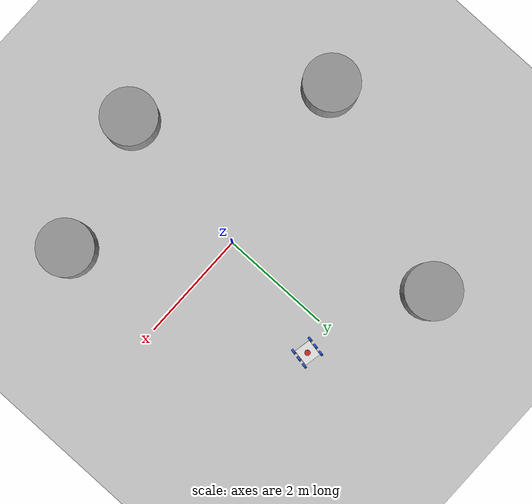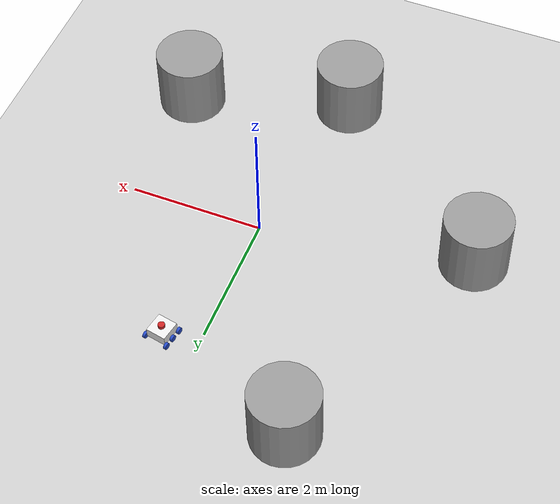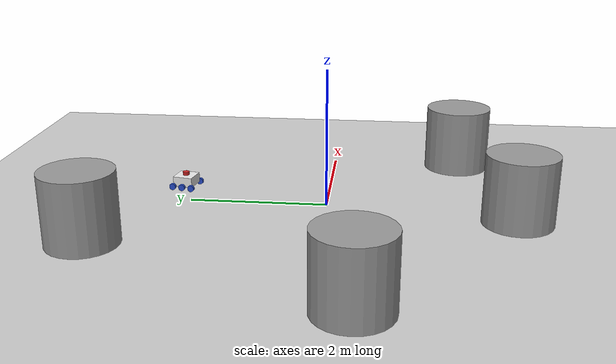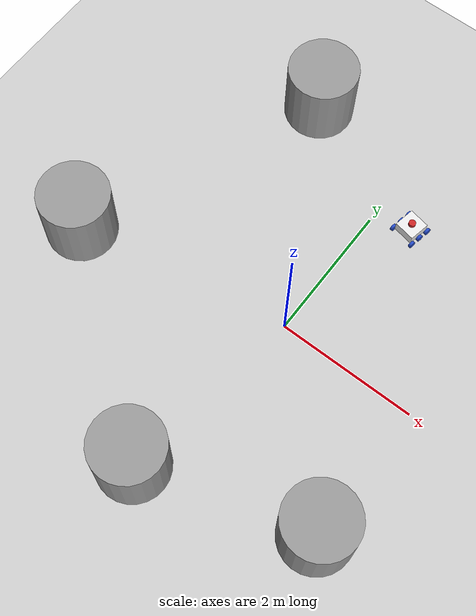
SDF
<sdf version="1.7">
 <world name="default">
  <light name="sun" type="directional">
   <pose>0 0 10 0 -0 0</pose>
   <diffuse>0.8 0.8 0.8 1</diffuse>
   <specular>0.2 0.2 0.2 1</specular>
   <attenuation>
    <range>1000</range>
    <constant>0.9</constant>
    <linear>0.01</linear>
    <quadratic>0.001</quadratic>
   </attenuation>
   <direction>-0.5 0.1 -0.9</direction>
   <spot><inner_angle>0</inner_angle><outer_angle>0</outer_angle><falloff>0</falloff></spot>
  </light>
  <model name="ground_plane">
   <static>1</static>
   <link name="link">
    <collision name="collision">
     <geometry><plane><normal>0 0 1</normal><size>100 100</size></plane></geometry>
     <surface>
      <contact><collide_bitmask>65535</collide_bitmask></contact>
      <friction><ode><mu>100</mu><mu2>50</mu2></ode></friction>
     </surface>
    </collision>
    <visual name="visual">
     <cast_shadows>0</cast_shadows>
     <geometry><plane><normal>0 0 1</normal><size>100 100</size></plane></geometry>
     <material>
      <script><uri>file://media/materials/scripts/gazebo.material</uri><name>Gazebo/Grey</name></script>
     </material>
    </visual>
   </link>
  </model>
  <gravity>0 0 -9.8</gravity>
  <magnetic_field>6e-06 2.3e-05 -4.2e-05</magnetic_field>
  <atmosphere type="adiabatic"/>
  <physics type="ode">
   <max_step_size>0.001</max_step_size>
   <real_time_factor>1</real_time_factor>
   <real_time_update_rate>1000</real_time_update_rate>
  </physics>
  <scene><ambient>0.4 0.4 0.4 1</ambient><background>0.7 0.7 0.7 1</background><shadows>1</shadows></scene>
  <audio><device>default</device></audio>
  <spherical_coordinates>
   <surface_model>EARTH_WGS84</surface_model>
   <latitude_deg>0</latitude_deg>
   <longitude_deg>0</longitude_deg>
   <elevation>0</elevation>
   <heading_deg>0</heading_deg>
  </spherical_coordinates>
  <model name="willy">
   <link name="base_footprint">
    <inertial>
     <pose>0 0 0.103571 0 -0 0</pose>
     <mass>0.7</mass>
     <inertia>
      <ixx>0.00628274</ixx>
      <ixy>0</ixy>
      <ixz>0</ixz>
      <iyy>0.00628274</iyy>
      <iyz>0</iyz>
      <izz>0.00775</izz>
     </inertia>
    </inertial>
    <collision name="base_footprint_fixed_joint_lump__chassis_collision">
     <pose>0 0 0.075 0 -0 0</pose>
     <geometry><box><size>0.3 0.3 0.15</size></box></geometry>
    </collision>
    <collision name="base_footprint_fixed_joint_lump__laser_frame_collision_1">
     <pose>0 0 0.175 0 -0 0</pose>
     <geometry><cylinder><length>0.05</length><radius>0.05</radius></cylinder></geometry>
    </collision>
    <visual name="base_footprint_fixed_joint_lump__chassis_visual">
     <pose>0 0 0.075 0 -0 0</pose>
     <geometry><box><size>0.3 0.3 0.15</size></box></geometry>
     <material>
      <script><name>Gazebo/White</name><uri>file://media/materials/scripts/gazebo.material</uri></script>
     </material>
    </visual>
    <visual name="base_footprint_fixed_joint_lump__laser_frame_visual_1">
     <pose>0 0 0.175 0 -0 0</pose>
     <geometry><cylinder><length>0.05</length><radius>0.05</radius></cylinder></geometry>
     <material>
      <script><name>Gazebo/Red</name><uri>file://media/materials/scripts/gazebo.material</uri></script>
     </material>
    </visual>
    <sensor name="laser" type="ray">
     <visualize>1</visualize>
     <update_rate>10</update_rate>
     <ray>
      <scan>
       <horizontal>
        <samples>360</samples>
        <min_angle>-3.14</min_angle>
        <max_angle>3.14</max_angle>
        <resolution>1</resolution>
       </horizontal>
       <vertical><samples>1</samples><min_angle>0</min_angle><max_angle>0</max_angle></vertical>
      </scan>
      <range><min>0.3</min><max>12</max></range>
     </ray>
     <plugin name="laser_controller" filename="libgazebo_ros_ray_sensor.so">
      <ros><argument>~/out:=scan</argument></ros>
      <output_type>sensor_msgs/LaserScan</output_type>
      <frame_name>laser_frame</frame_name>
     </plugin>
     <pose>0 0 0.175 0 -0 0</pose>
    </sensor>
   </link>
   <joint name="fl_wheel_joint" type="revolute">
    <pose relative_to="base_footprint">0.15 0.175 0 -1.5708 0 0</pose>
    <parent>base_footprint</parent>
    <child>fl_wheel</child>
    <axis>
     <xyz>0 0 1</xyz>
     <limit><lower>-1e+16</lower><upper>1e+16</upper></limit>
     <dynamics><spring_reference>0</spring_reference><spring_stiffness>0</spring_stiffness></dynamics>
    </axis>
   </joint>
   <link name="fl_wheel">
    <pose relative_to="fl_wheel_joint">0 0 0 0 -0 0</pose>
    <inertial>
     <mass>0.1</mass>
     <inertia>
      <ixx>7.58333e-05</ixx>
      <ixy>0</ixy>
      <ixz>0</ixz>
      <iyy>7.58333e-05</iyy>
      <iyz>0</iyz>
      <izz>0.000125</izz>
     </inertia>
    </inertial>
    <collision name="fl_wheel_collision">
     <geometry><cylinder><length>0.04</length><radius>0.05</radius></cylinder></geometry>
    </collision>
    <visual name="fl_wheel_visual">
     <geometry><cylinder><length>0.04</length><radius>0.05</radius></cylinder></geometry>
     <material>
      <script><name>Gazebo/Blue</name><uri>file://media/materials/scripts/gazebo.material</uri></script>
     </material>
    </visual>
   </link>
   <joint name="fr_wheel_joint" type="revolute">
    <pose relative_to="base_footprint">0.15 -0.175 0 -1.5708 0 0</pose>
    <parent>base_footprint</parent>
    <child>fr_wheel</child>
    <axis>
     <xyz>0 0 1</xyz>
     <limit><lower>-1e+16</lower><upper>1e+16</upper></limit>
     <dynamics><spring_reference>0</spring_reference><spring_stiffness>0</spring_stiffness></dynamics>
    </axis>
   </joint>
   <link name="fr_wheel">
    <pose relative_to="fr_wheel_joint">0 0 0 0 -0 0</pose>
    <inertial>
     <mass>0.1</mass>
     <inertia>
      <ixx>7.58333e-05</ixx>
      <ixy>0</ixy>
      <ixz>0</ixz>
      <iyy>7.58333e-05</iyy>
      <iyz>0</iyz>
      <izz>0.000125</izz>
     </inertia>
    </inertial>
    <collision name="fr_wheel_collision">
     <geometry><cylinder><length>0.04</length><radius>0.05</radius></cylinder></geometry>
    </collision>
    <visual name="fr_wheel_visual">
     <geometry><cylinder><length>0.04</length><radius>0.05</radius></cylinder></geometry>
     <material>
      <script><name>Gazebo/Blue</name><uri>file://media/materials/scripts/gazebo.material</uri></script>
     </material>
    </visual>
   </link>
   <joint name="ml_wheel_joint" type="revolute">
    <pose relative_to="base_footprint">0 0.175 0 -1.5708 0 0</pose>
    <parent>base_footprint</parent>
    <child>ml_wheel</child>
    <axis>
     <xyz>0 0 1</xyz>
     <limit><lower>-1e+16</lower><upper>1e+16</upper></limit>
     <dynamics><spring_reference>0</spring_reference><spring_stiffness>0</spring_stiffness></dynamics>
    </axis>
   </joint>
   <link name="ml_wheel">
    <pose relative_to="ml_wheel_joint">0 0 0 0 -0 0</pose>
    <inertial>
     <mass>0.1</mass>
     <inertia>
      <ixx>7.58333e-05</ixx>
      <ixy>0</ixy>
      <ixz>0</ixz>
      <iyy>7.58333e-05</iyy>
      <iyz>0</iyz>
      <izz>0.000125</izz>
     </inertia>
    </inertial>
    <collision name="ml_wheel_collision">
     <geometry><cylinder><length>0.04</length><radius>0.05</radius></cylinder></geometry>
    </collision>
    <visual name="ml_wheel_visual">
     <geometry><cylinder><length>0.04</length><radius>0.05</radius></cylinder></geometry>
     <material>
      <script><name>Gazebo/Blue</name><uri>file://media/materials/scripts/gazebo.material</uri></script>
     </material>
    </visual>
   </link>
   <joint name="mr_wheel_joint" type="revolute">
    <pose relative_to="base_footprint">0 -0.175 0 -1.5708 0 0</pose>
    <parent>base_footprint</parent>
    <child>mr_wheel</child>
    <axis>
     <xyz>0 0 1</xyz>
     <limit><lower>-1e+16</lower><upper>1e+16</upper></limit>
     <dynamics><spring_reference>0</spring_reference><spring_stiffness>0</spring_stiffness></dynamics>
    </axis>
   </joint>
   <link name="mr_wheel">
    <pose relative_to="mr_wheel_joint">0 0 0 0 -0 0</pose>
    <inertial>
     <mass>0.1</mass>
     <inertia>
      <ixx>7.58333e-05</ixx>
      <ixy>0</ixy>
      <ixz>0</ixz>
      <iyy>7.58333e-05</iyy>
      <iyz>0</iyz>
      <izz>0.000125</izz>
     </inertia>
    </inertial>
    <collision name="mr_wheel_collision">
     <geometry><cylinder><length>0.04</length><radius>0.05</radius></cylinder></geometry>
    </collision>
    <visual name="mr_wheel_visual">
     <geometry><cylinder><length>0.04</length><radius>0.05</radius></cylinder></geometry>
     <material>
      <script><name>Gazebo/Blue</name><uri>file://media/materials/scripts/gazebo.material</uri></script>
     </material>
    </visual>
   </link>
   <joint name="rl_wheel_joint" type="revolute">
    <pose relative_to="base_footprint">-0.15 0.175 0 -1.5708 0 0</pose>
    <parent>base_footprint</parent>
    <child>rl_wheel</child>
    <axis>
     <xyz>0 0 1</xyz>
     <limit><lower>-1e+16</lower><upper>1e+16</upper></limit>
     <dynamics><spring_reference>0</spring_reference><spring_stiffness>0</spring_stiffness></dynamics>
    </axis>
   </joint>
   <link name="rl_wheel">
    <pose relative_to="rl_wheel_joint">0 0 0 0 -0 0</pose>
    <inertial>
     <mass>0.1</mass>
     <inertia>
      <ixx>7.58333e-05</ixx>
      <ixy>0</ixy>
      <ixz>0</ixz>
      <iyy>7.58333e-05</iyy>
      <iyz>0</iyz>
      <izz>0.000125</izz>
     </inertia>
    </inertial>
    <collision name="rl_wheel_collision">
     <geometry><cylinder><length>0.04</length><radius>0.05</radius></cylinder></geometry>
    </collision>
    <visual name="rl_wheel_visual">
     <geometry><cylinder><length>0.04</length><radius>0.05</radius></cylinder></geometry>
     <material>
      <script><name>Gazebo/Blue</name><uri>file://media/materials/scripts/gazebo.material</uri></script>
     </material>
    </visual>
   </link>
   <joint name="rr_wheel_joint" type="revolute">
    <pose relative_to="base_footprint">-0.15 -0.175 0 -1.5708 0 0</pose>
    <parent>base_footprint</parent>
    <child>rr_wheel</child>
    <axis>
     <xyz>0 0 1</xyz>
     <limit><lower>-1e+16</lower><upper>1e+16</upper></limit>
     <dynamics><spring_reference>0</spring_reference><spring_stiffness>0</spring_stiffness></dynamics>
    </axis>
   </joint>
   <link name="rr_wheel">
    <pose relative_to="rr_wheel_joint">0 0 0 0 -0 0</pose>
    <inertial>
     <mass>0.1</mass>
     <inertia>
      <ixx>7.58333e-05</ixx>
      <ixy>0</ixy>
      <ixz>0</ixz>
      <iyy>7.58333e-05</iyy>
      <iyz>0</iyz>
      <izz>0.000125</izz>
     </inertia>
    </inertial>
    <collision name="rr_wheel_collision">
     <geometry><cylinder><length>0.04</length><radius>0.05</radius></cylinder></geometry>
    </collision>
    <visual name="rr_wheel_visual">
     <geometry><cylinder><length>0.04</length><radius>0.05</radius></cylinder></geometry>
     <material>
      <script><name>Gazebo/Blue</name><uri>file://media/materials/scripts/gazebo.material</uri></script>
     </material>
    </visual>
   </link>
   <static>0</static>
   <plugin name="object_controller" filename="libgazebo_ros_planar_move.so">
    <commandTopic>cmd_vel</commandTopic>
    <odometryTopic>odom</odometryTopic>
    <odometryFrame>odom</odometryFrame>
    <odometryRate>20.0</odometryRate>
    <robotBaseFrame>base_link</robotBaseFrame>
   </plugin>
   <pose>0.530235 2.20084 0.05 1e-06 -0 1.38172</pose>
  </model>
  <model name="unit_cylinder">
   <pose>-3.08026 -0.538704 0.499997 3e-06 4e-06 -0</pose>
   <link name="link">
    <inertial>
     <mass>1</mass>
     <inertia><ixx>0.145833</ixx><ixy>0</ixy><ixz>0</ixz><iyy>0.145833</iyy><iyz>0</iyz><izz>0.125</izz></inertia>
    </inertial>
    <collision name="collision">
     <geometry><cylinder><radius>0.5</radius><length>1</length></cylinder></geometry>
    </collision>
    <visual name="visual">
     <geometry><cylinder><radius>0.5</radius><length>1</length></cylinder></geometry>
     <material>
      <script><name>Gazebo/Grey</name><uri>file://media/materials/scripts/gazebo.material</uri></script>
     </material>
    </visual>
   </link>
  </model>
  <model name="unit_cylinder_0">
   <pose>-0.384974 -2.67236 0.499993 -3e-06 -4e-06 -0</pose>
   <link name="link">
    <inertial>
     <mass>1</mass>
     <inertia><ixx>0.145833</ixx><ixy>0</ixy><ixz>0</ixz><iyy>0.145833</iyy><iyz>0</iyz><izz>0.125</izz></inertia>
    </inertial>
    <collision name="collision">
     <geometry><cylinder><radius>0.5</radius><length>1</length></cylinder></geometry>
    </collision>
    <visual name="visual">
     <geometry><cylinder><radius>0.5</radius><length>1</length></cylinder></geometry>
     <material>
      <script><name>Gazebo/Grey</name><uri>file://media/materials/scripts/gazebo.material</uri></script>
     </material>
    </visual>
   </link>
  </model>
  <model name="unit_cylinder_1">
   <pose>-1.63273 3.04648 0.499993 -3e-06 -4e-06 -0</pose>
   <link name="link">
    <inertial>
     <mass>1</mass>
     <inertia><ixx>0.145833</ixx><ixy>0</ixy><ixz>0</ixz><iyy>0.145833</iyy><iyz>0</iyz><izz>0.125</izz></inertia>
    </inertial>
    <collision name="collision">
     <geometry><cylinder><radius>0.5</radius><length>1</length></cylinder></geometry>
    </collision>
    <visual name="visual">
     <geometry><cylinder><radius>0.5</radius><length>1</length></cylinder></geometry>
     <material>
      <script><name>Gazebo/Grey</name><uri>file://media/materials/scripts/gazebo.material</uri></script>
     </material>
    </visual>
   </link>
  </model>
  <model name="unit_cylinder_2">
   <pose>1.94652 -1.98425 0.499997 3e-06 4e-06 -0</pose>
   <link name="link">
    <inertial>
     <mass>1</mass>
     <inertia><ixx>0.145833</ixx><ixy>0</ixy><ixz>0</ixz><iyy>0.145833</iyy><iyz>0</iyz><izz>0.125</izz></inertia>
    </inertial>
    <collision name="collision">
     <geometry><cylinder><radius>0.5</radius><length>1</length></cylinder></geometry>
    </collision>
    <visual name="visual">
     <geometry><cylinder><radius>0.5</radius><length>1</length></cylinder></geometry>
     <material>
      <script><name>Gazebo/Grey</name><uri>file://media/materials/scripts/gazebo.material</uri></script>
     </material>
    </visual>
   </link>
  </model>
 </world>
</sdf>
